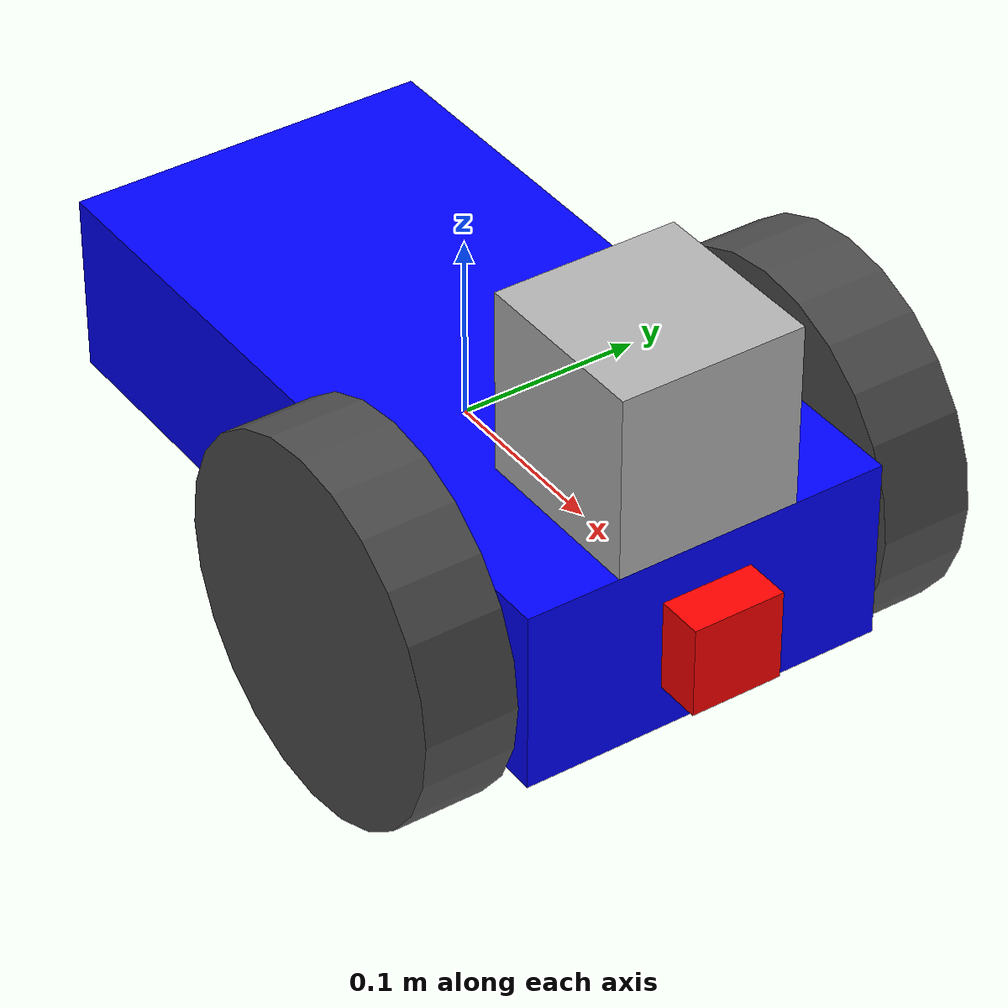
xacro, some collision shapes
<?xml version='1.0'?>

<robot name="my_robot" xmlns:xacro="http://ros.org/wiki/xacro">

  <xacro:include filename="$(find my_robot)/urdf/common_properties.xacro"/>
  <xacro:include filename="$(find my_robot)/urdf/my_robot.gazebo"/>

  <xacro:property name="chassis_length" value="0.4"/>
  <xacro:property name="chassis_width" value="0.2"/>
  <xacro:property name="chassis_height" value="0.1"/>

  <xacro:property name="wheel_radius" value="0.1"/>git
  <xacro:property name="wheel_length" value="0.05"/>

  <link name="base_link"></link>

  <joint name="robot_footprint_joint" type="fixed">
    <origin xyz="0 0 0" rpy="0 0 0" />
    <parent link="base_link"/>
    <child link="chassis" />
  </joint>

  <link name='chassis'>
    <pose>0 0 0.1 0 0 0</pose>
    <inertial>
      <mass value="15.0"/>
      <origin xyz="0.0 0 0" rpy=" 0 0 0"/>
      <inertia ixx="0.1" ixy="0" ixz="0" iyy="0.1" iyz="0" izz="0.1"/>
    </inertial>
    <collision>
      <origin xyz="0 0 0" rpy=" 0 0 0"/>
      <geometry>
        <box size="${chassis_length} ${chassis_width} ${chassis_height}"/>
      </geometry>
    </collision>
    <visual>
      <origin xyz="0 0 0" rpy=" 0 0 0"/>
      <geometry>
        <box size="${chassis_length} ${chassis_width} ${chassis_height}"/>
      </geometry>
      <xacro:material_blue/>
    </visual>
  </link>

  <joint name="chassis_joint_1" type="fixed">
    <origin xyz="0 0 0" rpy="0 0 0" />
    <parent link="chassis"/>
    <child link="caster" />
  </joint>

  <link name="caster">
    <collision>
      <origin xyz="-0.15 0 -0.05" rpy=" 0 0 0"/>
      <geometry>
        <sphere radius="0.05"/>
      </geometry>
    </collision>
    <visual>
      <origin xyz="-0.15 0 -0.05" rpy=" 0 0 0"/>
      <geometry>
        <sphere radius="0.05"/>
      </geometry>
      <xacro:material_blue/>
    </visual>
  </link>

  <joint name="left_wheel_hinge" type="continuous">
    <origin xyz="${chassis_length/2-wheel_radius} ${(chassis_width/2+wheel_length/2+0.005)*(1)} 0" rpy="0 0 0" />
    <parent link="chassis"/>
    <child link="wheel_left"/>
    <axis xyz="0 1 0"/>
    <limit effort="10000" velocity="1000"/>
    <dynamics damping="1.0" friction="1.0"/>
  </joint>

  <link name="wheel_left">
    <inertial>
      <mass value="5.0"/>
      <origin xyz="0.0 0 0" rpy=" 0 0 0"/>
      <inertia ixx="0.1" ixy="0" ixz="0" iyy="0.1" iyz="0" izz="0.1"/>
    </inertial>
    <collision>
      <origin xyz="0 0 0" rpy="0 1.5708 1.5708"/>
      <!--origin xyz="${chassis_length/2-wheel_radius} ${(chassis_width/2+wheel_length/2+0.005)*(-1)} 0" rpy=" 0 1.5708 1.5708"/ -->
      <geometry>
        <cylinder radius="${wheel_radius}" length="${wheel_length}"/>
      </geometry>
    </collision>
    <visual>
      <origin xyz="0 0 0" rpy="0 1.5708 1.5708"/>
      <!-- origin xyz="${chassis_length/2-wheel_radius} ${(chassis_width/2+wheel_length/2+0.005)*(-1)} 0" rpy=" 0 1.5708 1.5708"/ -->
      <geometry>
        <cylinder radius="${wheel_radius}" length="${wheel_length}"/>
      </geometry>
      <xacro:material_dark_grey/>
    </visual>
  </link>

  <joint name="right_wheel_hinge" type="continuous">
    <origin xyz="${chassis_length/2-wheel_radius} ${(chassis_width/2+wheel_length/2+0.005)*(-1)} 0" rpy="0 0 0" />
    <parent link="chassis"/>
    <child link="wheel_right"/>
    <axis xyz="0 1 0"/>
    <limit effort="10000" velocity="1000"/>
    <dynamics damping="1.0" friction="1.0"/>
  </joint>

  <link name="wheel_right">
    <inertial>
      <mass value="5.0"/>
      <origin xyz="0.0 0 0" rpy=" 0 0 0"/>
      <inertia ixx="0.1" ixy="0" ixz="0" iyy="0.1" iyz="0" izz="0.1"/>
    </inertial>
    <collision>
      <origin xyz="0 0 0" rpy="0 1.5708 1.5708"/>
      <!-- origin xyz="${chassis_length/2-wheel_radius} ${(chassis_width/2+wheel_length/2+0.005)*(1)} 0" rpy=" 0 1.5708 1.5708"/ -->
      <geometry>
        <cylinder radius="${wheel_radius}" length="${wheel_length}"/>
      </geometry>
    </collision>
    <visual>
      <origin xyz="0 0 0" rpy="0 1.5708 1.5708"/>
      <!-- origin xyz="${chassis_length/2-wheel_radius} ${(chassis_width/2+wheel_length/2+0.005)*(1)} 0" rpy=" 0 1.5708 1.5708"/ -->
      <geometry>
        <cylinder radius="${wheel_radius}" length="${wheel_length}"/>
      </geometry>
      <xacro:material_dark_grey/>
    </visual>
  </link>

  <!-- Add sensors -->

  <link name="camera_link">
    <inertial>
      <mass value="0.1"/>
      <origin xyz="0 0 0" rpy=" 0 0 0"/>
      <inertia ixx="1e-6" ixy="0" ixz="0" iyy="1e-6" iyz="0" izz="1e-6"/>
    </inertial>
    <collision>
      <origin xyz="0 0 0" rpy="0 0 0"/>
      <geometry>
        <box size="0.05 0.05 0.05"/>
      </geometry>
    </collision>
    <visual>
      <origin xyz="0 0 0" rpy="0 0 0"/>
      <geometry>
        <box size="0.05 0.05 0.05"/>
      </geometry>
      <xacro:material_red/>
    </visual>
  </link>

  <joint name="camera_joint" type="fixed">
    <origin xyz="${chassis_length/2} 0 0" rpy="0 0 0" />
    <parent link="chassis"/>
    <child link="camera_link"/>
  </joint>

  <joint name="camera_optical_joint" type="fixed">
    <origin xyz="0 0 0" rpy="-1.5707 0 -1.5707"/>
    <parent link="camera_link"/>
    <child link="camera_link_optical"/>
  </joint>

  <link name="camera_link_optical">
  </link>

  <link name="hokuyo">
    <inertial>
      <mass value="1e-5"/>
      <origin xyz="0 0 0" rpy=" 0 0 0"/>
      <inertia ixx="1e-6" ixy="0" ixz="0" iyy="1e-6" iyz="0" izz="1e-6"/>
    </inertial>
    <collision>
      <origin xyz="0 0 0" rpy="0 0 0"/>
      <geometry>
        <box size="0.1 0.1 0.1"/>
      </geometry>
    </collision>
    <visual>
      <origin xyz="0 0 0" rpy="0 0 0"/>
      <geometry>
        <mesh filename="package://my_robot/meshes/hokuyo.dae"/>
      </geometry>
    </visual>
  </link>

  <joint name="hokuyo_joint" type="fixed">
    <origin xyz="0.15 0 0.1" rpy="0 0 0" />
    <parent link="chassis"/>
    <child link="hokuyo"/>
  </joint>

</robot>

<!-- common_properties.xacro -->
<!-- Some useful properties -->

<robot name="xacro_properties" xmlns:xacro="http://ros.org/wiki/xacro">
  <xacro:property name="M_PI" value="3.1415926535897931" />
  <xacro:macro name="material_white">
    <material name="white">
      <color rgba="1 1 1 1"/>
    </material>
  </xacro:macro>
  <xacro:macro name="material_grey">
    <material name="grey">
      <color rgba="0.5 0.5 0.5 1"/>
    </material>
  </xacro:macro>
  <xacro:macro name="material_light_grey">
    <material name="light_grey">
      <color rgba="0.6 0.6 0.6 1"/>
    </material>
  </xacro:macro>
  <xacro:macro name="material_dark_grey">
    <material name="dark_grey">
      <color rgba="0.3 0.3 0.3 1"/>
    </material>
  </xacro:macro>
  <xacro:macro name="material_black">
    <material name="black">
      <color rgba="0.1 0.1 0.1 1"/>
    </material>
  </xacro:macro>
  <xacro:macro name="material_red">
    <material name="red">
      <color rgba="1 0 0 1"/>
    </material>
  </xacro:macro>
  <xacro:macro name="material_green">
    <material name="green">
      <color rgba="0.0 0.8 0.0 1"/>
    </material>
  </xacro:macro>
  <xacro:macro name="material_blue">
    <material name="blue">
      <color rgba="0.0 0.0 1.0 1"/>
    </material>
  </xacro:macro>
  <xacro:macro name="material_grey_blue">
    <material name="grey_blue">
      <color rgba="0.4 0.4 1.0 1"/>
    </material>
  </xacro:macro>
  <xacro:macro name="material_orange">
    <material name="orange">
      <color rgba="1.0 0.7 0.0 1"/>
    </material>
  </xacro:macro>
</robot>
